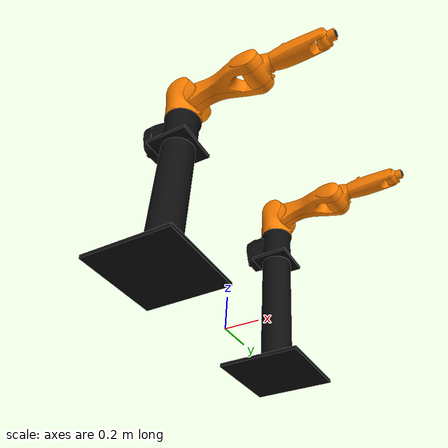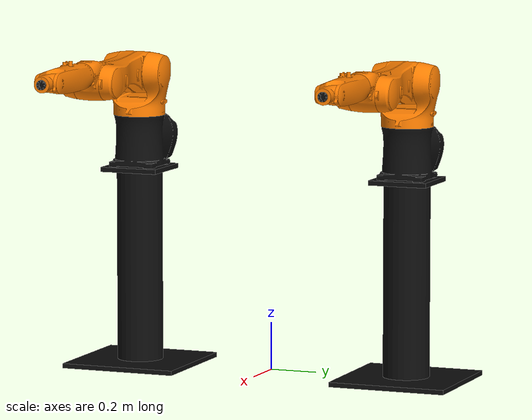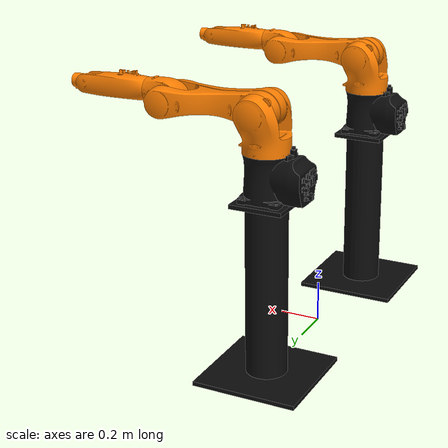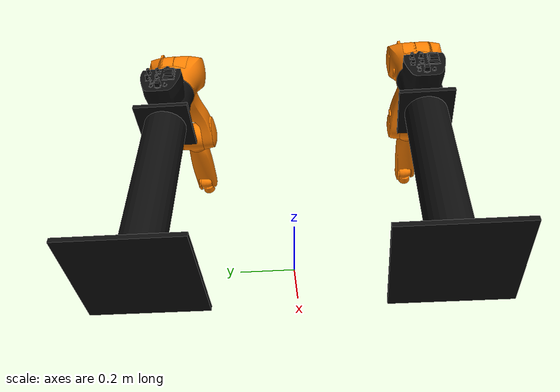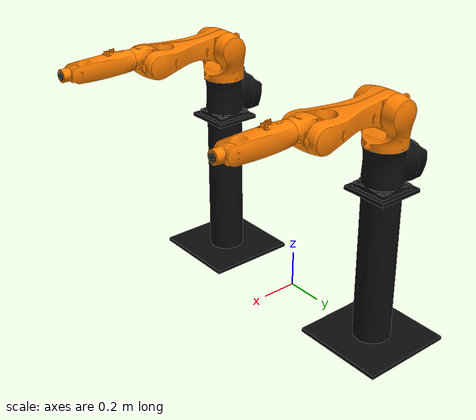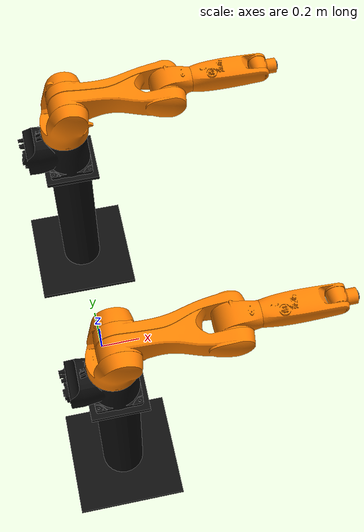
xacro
<?xml version="1.0"?>
<!-- This file sets up the URDF for the Agilus Robot Cell -->
<robot name="kuka_agilus" xmlns:xacro="http://www.ros.org/wiki/xacro">

  <!-- Include the other resource files -->
  <xacro:include filename="$(find kuka_agilus_support)/urdf/agilus_macro.xacro" />
  <xacro:include filename="$(find kuka_resources)/urdf/kuka_agilus_pedestal_macro.xacro" />

  <!-- Set the prefixes of each robot -->
  <xacro:property name="agilus1_prefix" value="ag1_"/>
  <xacro:property name="agilus2_prefix" value="ag2_"/>

  <!-- Create a fixed world coordinate system -->
  <link name="world"/>

  <!-- Load the two pedestals -->
  <xacro:kuka_agilus_pedestal prefix="${agilus1_prefix}" parent_link="world">
    <origin xyz="0 -0.6025 0" rpy="0 0 0"/>
  </xacro:kuka_agilus_pedestal>
  <xacro:kuka_agilus_pedestal prefix="${agilus2_prefix}" parent_link="world">
    <origin xyz="0 0.6025 0" rpy="0 0 0"/>
  </xacro:kuka_agilus_pedestal>

  <!-- Load the two robots -->
  <xacro:kuka_agilus prefix="${agilus1_prefix}"/>
  <xacro:kuka_agilus prefix="${agilus2_prefix}"/>

  <!-- Connect the robots to their respective pedestal -->
  <joint name="${agilus1_prefix}_mount_joint" type="fixed">
    <parent link="${agilus1_prefix}pedestal_mount_frame"/>
    <child link="${agilus1_prefix}base_link"/>
  </joint>
  <joint name="${agilus2_prefix}_mount_joint" type="fixed">
    <parent link="${agilus2_prefix}pedestal_mount_frame"/>
    <child link="${agilus2_prefix}base_link"/>
  </joint>
</robot>

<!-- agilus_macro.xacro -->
<!-- This file contains the URDF set up for an Agilus KR6 R900 sixx Robot -->
<robot xmlns:xacro="http://www.ros.org/wiki/xacro">

  <!-- Include resources -->
  <xacro:include filename="$(find kuka_resources)/urdf/common_materials.xacro"/>

  <!-- Set up common parameters -->
  <xacro:property name="DEG2RAD" value="0.017453292519943295"/>
  <xacro:property name="PI" value="3.141592653589793"/>

  <!-- Create the robot -->
  <xacro:macro name="kuka_agilus" params="prefix">

    <!-- LINKS -->
    <!-- base link -->
    <link name="${prefix}base_link">
      <visual>
	<origin xyz="0 0 0" rpy="0 0 0"/>
	<geometry>
	  <mesh filename="package://kuka_agilus_support/meshes/agilus/visual/base_link.stl" scale="0.001 0.001 0.001" />
	</geometry>
	<xacro:material_kuka_black/>
      </visual>
      <collision>
	<origin xyz="0 0 0" rpy="0 0 0"/>
	<geometry>
	  <mesh filename="package://kuka_agilus_support/meshes/agilus/collision/base_link.stl" scale="0.001 0.001 0.001" />
	</geometry>
      </collision>
    </link>
    <!-- link 1 (A1) -->
    <link name="${prefix}link_1">
      <!-- main link body -->
      <visual>
	<origin xyz="0 0 -0.217" rpy="0 0 0"/>
	<geometry>
	  <mesh filename="package://kuka_agilus_support/meshes/agilus/visual/link_1.stl" scale="0.001 0.001 0.001" />
	</geometry>
	<xacro:material_kuka_orange/>
      </visual>
      <collision>
	<origin xyz="0 0 -0.217" rpy="0 0 0"/>
	<geometry>
	  <mesh filename="package://kuka_agilus_support/meshes/agilus/collision/link_1.stl" scale="0.001 0.001 0.001" />
	</geometry>
      </collision>
    </link>
    <!-- link 2 (A2) -->
    <link name="${prefix}link_2">
      <visual>
	<origin xyz="-0.025 0 -0.400" rpy="0 0 0"/>
	<geometry>
	  <mesh filename="package://kuka_agilus_support/meshes/agilus/visual/link_2.stl" scale="0.001 0.001 0.001" />
	</geometry>
	<xacro:material_kuka_orange/>
      </visual>
      <collision>
	<origin xyz="-0.025 0 -0.400" rpy="0 0 0"/>
	<geometry>
	  <mesh filename="package://kuka_agilus_support/meshes/agilus/collision/link_2.stl" scale="0.001 0.001 0.001" />
	</geometry>
      </collision>
    </link>
    <!-- link 3 (A3)-->
    <link name="${prefix}link_3">
      <visual>
	<origin xyz="-0.025 0 -0.855" rpy="0 0 0"/>
	<geometry>
	  <mesh filename="package://kuka_agilus_support/meshes/agilus/visual/link_3.stl" scale="0.001 0.001 0.001" />
	</geometry>
	<xacro:material_kuka_orange/>
      </visual>
      <collision>
	<origin xyz="-0.025 0 -0.855" rpy="0 0 0"/>
	<geometry>
	  <mesh filename="package://kuka_agilus_support/meshes/agilus/collision/link_3.stl" scale="0.001 0.001 0.001" />
	</geometry>
      </collision>
    </link>
    <!-- link 4 (A4)-->
    <link name="${prefix}link_4">
      <visual>
	<origin xyz="-0.132 0 -0.890" rpy="0 0 0"/>
	<geometry>
	  <mesh filename="package://kuka_agilus_support/meshes/agilus/visual/link_4.stl" scale="0.001 0.001 0.001" />
	</geometry>
	<xacro:material_kuka_orange/>
      </visual>
      <collision>
	<origin xyz="-0.132 0 -0.890" rpy="0 0 0"/>
	<geometry>
	  <mesh filename="package://kuka_agilus_support/meshes/agilus/collision/link_4.stl" scale="0.001 0.001 0.001" />
	</geometry>
      </collision>
    </link>
    <!-- link 5 (A5)-->
    <link name="${prefix}link_5">
      <visual>
	<origin xyz="-0.445 0 -0.890" rpy="0 0 0"/>
	<geometry>
	  <mesh filename="package://kuka_agilus_support/meshes/agilus/visual/link_5.stl" scale="0.001 0.001 0.001" />
	</geometry>
	<xacro:material_kuka_orange/>
      </visual>
      <collision>
	<origin xyz="-0.445 0 -0.890" rpy="0 0 0"/>
	<geometry>
	  <mesh filename="package://kuka_agilus_support/meshes/agilus/collision/link_5.stl" scale="0.001 0.001 0.001" />
	</geometry>
      </collision>
    </link>
    <!-- link 6 (A6)-->
    <link name="${prefix}link_6">
      <visual>
	<origin xyz="-0.511 0 -0.890" rpy="0 0 0"/>
	<geometry>
	  <mesh filename="package://kuka_agilus_support/meshes/agilus/visual/link_6.stl" scale="0.001 0.001 0.001" />
	</geometry>
	<xacro:material_kuka_black/>
      </visual>
      <collision>
	<origin xyz="-0.511 0 -0.890" rpy="0 0 0"/>
	<geometry>
	  <mesh filename="package://kuka_agilus_support/meshes/agilus/collision/link_6.stl" scale="0.001 0.001 0.001" />
	</geometry>
      </collision>
    </link>
    <!-- tool link -->
    <link name="${prefix}tool0"/>
    <!-- END LINKS -->

    <!-- JOINTS -->
    <!-- joint 1 (A1) -->
    <joint name="${prefix}joint_1" type="revolute">
      <origin xyz="0 0 0.217" rpy="0 0 0"/>
      <parent link="${prefix}base_link"/>
      <child link="${prefix}link_1"/>
      <axis xyz="0 0 -1"/>
      <limit effort="0" lower="${-DEG2RAD * 170}" upper="${DEG2RAD * 170}" velocity="${DEG2RAD * 360}"/>
    </joint>
    <!-- joint 2 (A2) -->
    <joint name="${prefix}joint_2" type="revolute">
      <origin xyz="0.025 0 0.183" rpy="0 ${PI/2} 0"/>
      <parent link="${prefix}link_1"/>
      <child link="${prefix}link_2"/>
      <axis xyz="0 1 0"/>
      <limit effort="0" lower="${-DEG2RAD * 190}" upper="${DEG2RAD * 45}" velocity="${DEG2RAD * 300}"/>
    </joint>
    <!-- joint 3 (A3) -->
    <joint name="${prefix}joint_3" type="revolute">
      <origin xyz="0 0 0.455" rpy="0 ${-PI/2} 0"/>
      <parent link="${prefix}link_2"/>
      <child link="${prefix}link_3"/>
      <axis xyz="0 1 0"/>
      <limit effort="0" lower="${-DEG2RAD * 120}" upper="${DEG2RAD * 156}" velocity="${DEG2RAD * 360}"/>
    </joint>
    <!-- joint 4 (A4) -->
    <joint name="${prefix}joint_4" type="revolute">
      <origin xyz="0.107 0 0.035" rpy="0 0 0"/>
      <parent link="${prefix}link_3"/>
      <child link="${prefix}link_4"/>
      <axis xyz="1 0 0"/>
      <limit effort="0" lower="${-DEG2RAD * 185}" upper="${DEG2RAD * 185}" velocity="${DEG2RAD * 381}"/>
    </joint>
    <!-- joint 5 (A5) -->
    <joint name="${prefix}joint_5" type="revolute">
      <origin xyz="0.313 0 0" rpy="0 0 0"/>
      <parent link="${prefix}link_4"/>
      <child link="${prefix}link_5"/>
      <axis xyz="0 1 0"/>
      <limit effort="0" lower="${-DEG2RAD * 120}" upper="${DEG2RAD * 120}" velocity="${DEG2RAD * 388}"/>
    </joint>
    <!-- joint 6 (A6) -->
    <joint name="${prefix}joint_6" type="revolute">
      <origin xyz="0.070 0 0" rpy="0 0 0"/>
      <parent link="${prefix}link_5"/>
      <child link="${prefix}link_6"/>
      <axis xyz="1 0 0"/>
      <limit effort="0" lower="${-DEG2RAD * 350}" upper="${DEG2RAD * 350}" velocity="${DEG2RAD * 615}"/>
    </joint>
    <!-- tool joint -->
    <joint name="${prefix}joint_6-tool0" type="fixed">
      <parent link="${prefix}link_6"/>
      <child link="${prefix}tool0"/>
      <origin xyz="0 0 0" rpy="0 ${PI/2} 0"/>
    </joint>
    <!-- END JOINTS -->

  </xacro:macro>
</robot>

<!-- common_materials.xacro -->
<robot xmlns:xacro="http://ros.org/wiki/xacro">
  <xacro:include filename="$(find kuka_resources)/urdf/common_colours.xacro"/>

    <material name="kuka_orange">
      <color rgba="${color_kuka_orange}"/>
    </material>
    <material name="kuka_black">
      <color rgba="${color_kuka_black}"/>
    </material>

    <xacro:macro name="material_kuka_orange">
        <material name="">
            <color rgba="${color_kuka_orange}"/>
        </material>
    </xacro:macro>

    <xacro:macro name="material_kuka_black">
        <material name="">
            <color rgba="${color_kuka_black}"/>
        </material>
    </xacro:macro>

    <xacro:macro name="material_kuka" params="color">
      <xacro:if color="black">
        <xacro:material_kuka_black/>
      </xacro:if>
      <xacro:if color="orange">
        <xacro:material_kuka_orange/>
      </xacro:if>
    </xacro:macro>

</robot>

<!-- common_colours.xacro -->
<!-- This file contains the URDF parameters for the common kuka colors -->
<robot xmlns:xacro="http://ros.org/wiki/xacro">
    <xacro:property name="color_kuka_orange" value="1.0 0.5 0.0 1.0"/>
    <xacro:property name="color_kuka_black" value="0.05 0.05 0.05 1.0"/>
</robot>

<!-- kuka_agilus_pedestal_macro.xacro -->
<!-- This file is a resource file for the pedestal which the agilus robots are mounted on -->
<robot xmlns:xacro="http://www.ros.org/wiki/xacro">

  <!-- Create the pedestal -->
  <xacro:macro name="kuka_agilus_pedestal" params="prefix parent_link *origin">

    <!-- Head link which is the top square plate of the pedestal -->
    <link name="${prefix}pedestal_head">
      <visual>
	<origin xyz="0 0 0" rpy="0 0 0"/>
	<geometry>
	  <box size="0.25 0.25 0.02"/>
	</geometry>
	<xacro:material_kuka_black/>
      </visual>
      <collision>
	<origin xyz="0 0 0.01" rpy="0 0 0"/>
	<geometry>
	  <box size="0.25 0.25 0.02"/>
	</geometry>
      </collision>
    </link>

    <!-- Body link which is the long cylinder part of the pedestal -->
    <link name="${prefix}pedestal_body">
      <visual>
	<origin xyz="0 0 0" rpy="0 0 0"/>
	<geometry>
	  <cylinder radius="0.0975" length="0.81"/>
	</geometry>
	<xacro:material_kuka_black/>
      </visual>
      <collision>
	<origin xyz="0 0 0.405" rpy="0 0 0"/>
	<geometry>
	  <cylinder radius="0.195" length="0.81"/>
	</geometry>
      </collision>
    </link>

    <!-- Foot link which is the bottom square plate of the pedestal -->
    <link name="${prefix}pedestal_foot">
      <visual>
	<origin xyz="0 0 0" rpy="0 0 0"/>
	<geometry>
	  <box size="0.5 0.5 0.02"/>
	</geometry>
	<xacro:material_kuka_black/>
      </visual>
      <collision>
	<origin xyz="0 0 0.01" rpy="0 0 0"/>
	<geometry>
	  <box size="0.5 0.5 0.02"/>
	</geometry>
      </collision>
    </link>

    <!-- Mount link for mounting the robot to the pedestal -->
    <link name="${prefix}pedestal_mount_frame"/>

    <!-- Joints which connects the pedestal together -->
    <joint name="${prefix}pedestal_neck_joint" type="fixed">
      <origin xyz="0 0 0.415" rpy="0 0 0"/>
      <parent link="${prefix}pedestal_body"/>
      <child link="${prefix}pedestal_head"/>
    </joint>

    <joint name="${prefix}pedestal_base_joint" type="fixed">
      <insert_block name="origin"/>
      <parent link="${parent_link}"/>
      <child link="${prefix}pedestal_foot"/>
    </joint>

    <joint name="${prefix}pedestal_ancle_joint" type="fixed">
      <origin xyz="0 0 0.415" rpy="0 0 0"/>
      <parent link="${prefix}pedestal_foot"/>
      <child link="${prefix}pedestal_body"/>
    </joint>

    <joint name="${prefix}pedestal_mount_joint" type="fixed">
      <origin xyz="0 0 0.01" rpy="0 0 0"/>
      <parent link="${prefix}pedestal_head"/>
      <child link="${prefix}pedestal_mount_frame"/>
    </joint>

  </xacro:macro>

</robot>
